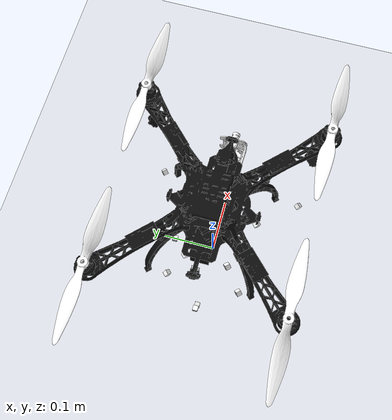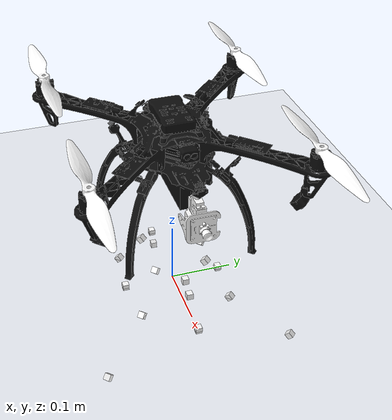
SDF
<?xml version="1.0" ?>
<sdf version='1.10'>
  <world name='hills'>
    <physics name='1ms' type='ignore'>
      <max_step_size>0.001</max_step_size>
      <real_time_factor>1</real_time_factor>
      <real_time_update_rate>1000</real_time_update_rate>
    </physics>
    <plugin name='gz::sim::systems::Physics' filename='gz-sim-physics-system'/>
    <plugin name='gz::sim::systems::Sensors' filename='gz-sim-sensors-system'>
      <render_engine>ogre2</render_engine>
    </plugin>
    <plugin name='gz::sim::systems::UserCommands' filename='gz-sim-user-commands-system'/>
    <plugin name='gz::sim::systems::SceneBroadcaster' filename='gz-sim-scene-broadcaster-system'/>
    <plugin name='gz::sim::systems::Imu' filename='gz-sim-imu-system'/>
    <plugin name='gz::sim::systems::NavSat' filename='gz-sim-navsat-system'/>
    <scene>
      <ambient>1 1 1 1</ambient>
      <background>0.800000012 0.800000012 0.800000012 1</background>
      <sky/>
      <shadows>true</shadows>
    </scene>
    <gravity>0 0 -9.8000000000000007</gravity>
    <magnetic_field>5.5644999999999998e-06 2.2875799999999999e-05 -4.2388400000000002e-05</magnetic_field>
    <atmosphere type='adiabatic'/>
    <model name='ground_plane'>
      <static>true</static>
      <link name='link'>
        <collision name='collision'>
          <geometry>
            <plane>
              <normal>0 0 1</normal>
              <size>100 100</size>
            </plane>
          </geometry>
          <surface>
            <friction>
              <ode/>
            </friction>
            <bounce/>
            <contact/>
          </surface>
        </collision>
        <visual name='visual'>
          <geometry>
            <plane>
              <normal>0 0 1</normal>
              <size>100 100</size>
            </plane>
          </geometry>
          <material>
            <ambient>0.800000012 0.800000012 0.800000012 1</ambient>
            <diffuse>0.800000012 0.800000012 0.800000012 1</diffuse>
            <specular>0.800000012 0.800000012 0.800000012 1</specular>
          </material>
        </visual>
        <pose>0 0 0 0 0 0</pose>
        <inertial>
          <pose>0 0 0 0 0 0</pose>
          <mass>1</mass>
          <inertia>
            <ixx>1</ixx>
            <ixy>0</ixy>
            <ixz>0</ixz>
            <iyy>1</iyy>
            <iyz>0</iyz>
            <izz>1</izz>
          </inertia>
        </inertial>
        <enable_wind>false</enable_wind>
      </link>
      <pose>0 0 0 0 0 0</pose>
      <self_collide>false</self_collide>
    </model>

    <include>
      <uri>model://kestrel_drone_lidar</uri>
    </include>

    <light name='sun' type='directional'>
      <pose>0 0 10 0 0 0</pose>
      <cast_shadows>true</cast_shadows>
      <intensity>1</intensity>
      <direction>-0.5 0.10000000000000001 -0.90000000000000002</direction>
      <diffuse>0.800000012 0.800000012 0.800000012 1</diffuse>
      <specular>0.800000012 0.800000012 0.800000012 1</specular>
      <attenuation>
        <range>1000</range>
        <linear>0.0099999997764825821</linear>
        <constant>0.89999997615814209</constant>
        <quadratic>0.0010000000474974513</quadratic>
      </attenuation>
      <spot>
        <inner_angle>0</inner_angle>
        <outer_angle>0</outer_angle>
        <falloff>0</falloff>
      </spot>
    </light>
  </world>
</sdf>

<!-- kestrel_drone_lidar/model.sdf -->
<sdf version="1.9">
    <model name='kestrel_drone_lidar'>
        <include>
            <uri>model://kestrel_drone</uri>
        </include>

        <!-- lidar 1: 45 down-forward-left  -->
        <link name="45dfl">
            <pose relative_to="45dfl-joint">0 0 0 0 0 0</pose>
            <inertial>
                <mass>0.1</mass>
                <inertia>
                    <ixx>0.000166667</ixx>
                    <iyy>0.000166667</iyy>
                    <izz>0.000166667</izz>
                </inertia>
            </inertial>
            <collision name="collision">
                <geometry>
                    <box>
                    <size>0.01 0.01 0.01</size>
                    </box>
                </geometry>
            </collision>
            <visual name="visual">
                <geometry>
                    <box>
                    <size>0.01 0.01 0.01</size>
                    </box>
                </geometry>
                <material>
                    <diffuse>1 1 1 0</diffuse>
                    <ambient>1 1 1 0</ambient>
                    <specular>1 1 1 0</specular>
                </material>
            </visual>
            <sensor name='gpu_lidar' type='gpu_lidar'>
                <topic>lidar/l45dfl</topic>
                <update_rate>10</update_rate>
                <lidar>
                    <scan>
                    <horizontal>
                        <samples>640</samples>
                        <resolution>1</resolution>
                        <min_angle>-0.471239</min_angle>
                        <max_angle>0.471239</max_angle>
                    </horizontal>
                    <vertical>
                        <samples>16</samples>
                        <resolution>1</resolution>
                        <min_angle>-0.471239</min_angle>
                        <max_angle>0.471239</max_angle>
                    </vertical>
                    </scan>
                    <range>
                    <min>0.08</min>
                    <max>4.0</max>
                    <resolution>0.01</resolution>
                    </range>
                    <noise>
                        <type>gaussian</type>
                        <mean>0.0</mean>
                        <stddev>0.1</stddev>
                    </noise>
                </lidar>
                <visualize>true</visualize>
            </sensor>
        </link>
        <joint name="45dfl-joint" type="fixed">
            <pose relative_to="kestrel_drone::base_link">
                0.0739 0.0734 0 0 0.785398 0.785398
            </pose>
            <parent>kestrel_drone::base_link</parent>
            <child>45dfl</child>
        </joint>

        <!-- Lidar 2: forward -->
        <link name="forward">
            <pose relative_to="forward-joint">0 0 0 0 0 0</pose>
            <inertial>
                <mass>0.1</mass>
                <inertia>
                    <ixx>0.000166667</ixx>
                    <iyy>0.000166667</iyy>
                    <izz>0.000166667</izz>
                </inertia>
            </inertial>
            <collision name="collision">
                <geometry>
                    <box>
                    <size>0.01 0.01 0.01</size>
                    </box>
                </geometry>
            </collision>
            <visual name="visual">
                <geometry>
                    <box>
                    <size>0.01 0.01 0.01</size>
                    </box>
                </geometry>
                <material>
                    <diffuse>1 1 1 0</diffuse>
                    <ambient>1 1 1 0</ambient>
                    <specular>1 1 1 0</specular>
                </material>
            </visual>
            <sensor name='gpu_lidar' type='gpu_lidar'>
                <topic>lidar/forward</topic>
                <update_rate>10</update_rate>
                <lidar>
                    <scan>
                    <horizontal>
                        <samples>640</samples>
                        <resolution>1</resolution>
                        <min_angle>-0.471239</min_angle>
                        <max_angle>0.471239</max_angle>
                    </horizontal>
                    <vertical>
                        <samples>16</samples>
                        <resolution>1</resolution>
                        <min_angle>-0.471239</min_angle>
                        <max_angle>0.471239</max_angle>
                    </vertical>
                    </scan>
                    <range>
                    <min>0.08</min>
                    <max>4.0</max>
                    <resolution>0.01</resolution>
                    </range>
                    <noise>
                        <type>gaussian</type>
                        <mean>0.0</mean>
                        <stddev>0.1</stddev>
                    </noise>
                </lidar>
                <visualize>true</visualize>
            </sensor>
        </link>
        <joint name="forward-joint" type="fixed">
            <pose relative_to="kestrel_drone::base_link">
                0.1294	0.0004	0.0012 0 0 0
            </pose>
            <parent>kestrel_drone::base_link</parent>
            <child>forward</child>
        </joint>

        <!-- Lidar 3: 45 down-forward-right -->
        <link name="45dfr">
            <pose relative_to="45dfr-joint">0 0 0 0 0 0</pose>
            <inertial>
                <mass>0.1</mass>
                <inertia>
                    <ixx>0.000166667</ixx>
                    <iyy>0.000166667</iyy>
                    <izz>0.000166667</izz>
                </inertia>
            </inertial>
            <collision name="collision">
                <geometry>
                    <box>
                    <size>0.01 0.01 0.01</size>
                    </box>
                </geometry>
            </collision>
            <visual name="visual">
                <geometry>
                    <box>
                    <size>0.01 0.01 0.01</size>
                    </box>
                </geometry>
                <material>
                    <diffuse>1 1 1 0</diffuse>
                    <ambient>1 1 1 0</ambient>
                    <specular>1 1 1 0</specular>
                </material>
            </visual>
            <sensor name='gpu_lidar' type='gpu_lidar'>
                <topic>lidar/l45dfr</topic>
                <update_rate>10</update_rate>
                <lidar>
                    <scan>
                    <horizontal>
                        <samples>640</samples>
                        <resolution>1</resolution>
                        <min_angle>-0.471239</min_angle>
                        <max_angle>0.471239</max_angle>
                    </horizontal>
                    <vertical>
                        <samples>16</samples>
                        <resolution>1</resolution>
                        <min_angle>-0.471239</min_angle>
                        <max_angle>0.471239</max_angle>
                    </vertical>
                    </scan>
                    <range>
                    <min>0.08</min>
                    <max>4.0</max>
                    <resolution>0.01</resolution>
                    </range>
                    <noise>
                        <type>gaussian</type>
                        <mean>0.0</mean>
                        <stddev>0.1</stddev>
                    </noise>
                </lidar>
                <visualize>true</visualize>
            </sensor>
        </link>
        <joint name="45dfr-joint" type="fixed">
            <pose relative_to="kestrel_drone::base_link">
                0.0730	-0.0735	0 0 0.785398 -0.785398
            </pose>
            <parent>kestrel_drone::base_link</parent>
            <child>45dfr</child>
        </joint>

        <!-- Lidar 4: Right -->
        <link name="right">
            <pose relative_to="right-joint">0 0 0 0 0 0</pose>
            <inertial>
                <mass>0.1</mass>
                <inertia>
                    <ixx>0.000166667</ixx>
                    <iyy>0.000166667</iyy>
                    <izz>0.000166667</izz>
                </inertia>
            </inertial>
            <collision name="collision">
                <geometry>
                    <box>
                    <size>0.01 0.01 0.01</size>
                    </box>
                </geometry>
            </collision>
            <visual name="visual">
                <geometry>
                    <box>
                    <size>0.01 0.01 0.01</size>
                    </box>
                </geometry>
                <material>
                    <diffuse>1 1 1 0</diffuse>
                    <ambient>1 1 1 0</ambient>
                    <specular>1 1 1 0</specular>
                </material>
            </visual>
            <sensor name='gpu_lidar' type='gpu_lidar'>
                <topic>lidar/right</topic>
                <update_rate>10</update_rate>
                <lidar>
                    <scan>
                    <horizontal>
                        <samples>640</samples>
                        <resolution>1</resolution>
                        <min_angle>-0.471239</min_angle>
                        <max_angle>0.471239</max_angle>
                    </horizontal>
                    <vertical>
                        <samples>16</samples>
                        <resolution>1</resolution>
                        <min_angle>-0.471239</min_angle>
                        <max_angle>0.471239</max_angle>
                    </vertical>
                    </scan>
                    <range>
                    <min>0.08</min>
                    <max>4.0</max>
                    <resolution>0.01</resolution>
                    </range>
                    <noise>
                        <type>gaussian</type>
                        <mean>0.0</mean>
                        <stddev>0.1</stddev>
                    </noise>
                </lidar>
                <visualize>true</visualize>
            </sensor>
        </link>
        <joint name="right-joint" type="fixed">
            <pose relative_to="kestrel_drone::base_link">
                0 -0.0810 0.0011 0 0 -1.570796
            </pose>
            <parent>kestrel_drone::base_link</parent>
            <child>right</child>
        </joint>

        <!-- Lidar 5: 45 down-rear-right -->
        <link name="45drr">
            <pose relative_to="45drr-joint">0 0 0 0 0 0</pose>
            <inertial>
                <mass>0.1</mass>
                <inertia>
                    <ixx>0.000166667</ixx>
                    <iyy>0.000166667</iyy>
                    <izz>0.000166667</izz>
                </inertia>
            </inertial>
            <collision name="collision">
                <geometry>
                    <box>
                    <size>0.01 0.01 0.01</size>
                    </box>
                </geometry>
            </collision>
            <visual name="visual">
                <geometry>
                    <box>
                    <size>0.01 0.01 0.01</size>
                    </box>
                </geometry>
                <material>
                    <diffuse>1 1 1 0</diffuse>
                    <ambient>1 1 1 0</ambient>
                    <specular>1 1 1 0</specular>
                </material>
            </visual>
            <sensor name='gpu_lidar' type='gpu_lidar'>
                <topic>lidar/l45drr</topic>
                <update_rate>10</update_rate>
                <lidar>
                    <scan>
                    <horizontal>
                        <samples>640</samples>
                        <resolution>1</resolution>
                        <min_angle>-0.471239</min_angle>
                        <max_angle>0.471239</max_angle>
                    </horizontal>
                    <vertical>
                        <samples>16</samples>
                        <resolution>1</resolution>
                        <min_angle>-0.471239</min_angle>
                        <max_angle>0.471239</max_angle>
                    </vertical>
                    </scan>
                    <range>
                    <min>0.08</min>
                    <max>4.0</max>
                    <resolution>0.01</resolution>
                    </range>
                    <noise>
                        <type>gaussian</type>
                        <mean>0.0</mean>
                        <stddev>0.1</stddev>
                    </noise>
                </lidar>
                <visualize>true</visualize>
            </sensor>
        </link>
        <joint name="45drr-joint" type="fixed">
            <pose relative_to="kestrel_drone::base_link">
                -0.0739	-0.0726	0 0 2.35619 0.785398
            </pose>
            <parent>kestrel_drone::base_link</parent>
            <child>45drr</child>
        </joint>

        <!-- Lidar 6: Rear -->
        <link name="rear">
            <pose relative_to="rear-joint">0 0 0 0 0 0</pose>
            <inertial>
                <mass>0.1</mass>
                <inertia>
                    <ixx>0.000166667</ixx>
                    <iyy>0.000166667</iyy>
                    <izz>0.000166667</izz>
                </inertia>
            </inertial>
            <collision name="collision">
                <geometry>
                    <box>
                    <size>0.01 0.01 0.01</size>
                    </box>
                </geometry>
            </collision>
            <visual name="visual">
                <geometry>
                    <box>
                    <size>0.01 0.01 0.01</size>
                    </box>
                </geometry>
                <material>
                    <diffuse>1 1 1 0</diffuse>
                    <ambient>1 1 1 0</ambient>
                    <specular>1 1 1 0</specular>
                </material>
            </visual>
            <sensor name='gpu_lidar' type='gpu_lidar'>
                <topic>lidar/rear</topic>
                <update_rate>10</update_rate>
                <lidar>
                    <scan>
                    <horizontal>
                        <samples>640</samples>
                        <resolution>1</resolution>
                        <min_angle>-0.471239</min_angle>
                        <max_angle>0.471239</max_angle>
                    </horizontal>
                    <vertical>
                        <samples>16</samples>
                        <resolution>1</resolution>
                        <min_angle>-0.471239</min_angle>
                        <max_angle>0.471239</max_angle>
                    </vertical>
                    </scan>
                    <range>
                    <min>0.08</min>
                    <max>4.0</max>
                    <resolution>0.01</resolution>
                    </range>
                    <noise>
                        <type>gaussian</type>
                        <mean>0.0</mean>
                        <stddev>0.1</stddev>
                    </noise>
                </lidar>
                <visualize>true</visualize>
            </sensor>
        </link>
        <joint name="rear-joint" type="fixed">
            <pose relative_to="kestrel_drone::base_link">
                -0.1264	0.0004	0.0012 0 0 3.14159
            </pose>
            <parent>kestrel_drone::base_link</parent>
            <child>rear</child>
        </joint>

        <!-- Lidar 7: 45 down-rear-left -->
        <link name="45drl">
            <pose relative_to="45drl-joint">0 0 0 0 0 0</pose>
            <inertial>
                <mass>0.1</mass>
                <inertia>
                    <ixx>0.000166667</ixx>
                    <iyy>0.000166667</iyy>
                    <izz>0.000166667</izz>
                </inertia>
            </inertial>
            <collision name="collision">
                <geometry>
                    <box>
                    <size>0.01 0.01 0.01</size>
                    </box>
                </geometry>
            </collision>
            <visual name="visual">
                <geometry>
                    <box>
                    <size>0.01 0.01 0.01</size>
                    </box>
                </geometry>
                <material>
                    <diffuse>1 1 1 0</diffuse>
                    <ambient>1 1 1 0</ambient>
                    <specular>1 1 1 0</specular>
                </material>
            </visual>
            <sensor name='gpu_lidar' type='gpu_lidar'>
                <topic>lidar/l45drl</topic>
                <update_rate>10</update_rate>
                <lidar>
                    <scan>
                    <horizontal>
                        <samples>640</samples>
                        <resolution>1</resolution>
                        <min_angle>-0.471239</min_angle>
                        <max_angle>0.471239</max_angle>
                    </horizontal>
                    <vertical>
                        <samples>16</samples>
                        <resolution>1</resolution>
                        <min_angle>-0.471239</min_angle>
                        <max_angle>0.471239</max_angle>
                    </vertical>
                    </scan>
                    <range>
                    <min>0.08</min>
                    <max>4.0</max>
                    <resolution>0.01</resolution>
                    </range>
                    <noise>
                        <type>gaussian</type>
                        <mean>0.0</mean>
                        <stddev>0.1</stddev>
                    </noise>
                </lidar>
                <visualize>true</visualize>
            </sensor>
        </link>
        <joint name="45drl-joint" type="fixed">
            <pose relative_to="kestrel_drone::base_link">
                -0.0730	0.0743	0 0 2.35619 -0.785398
            </pose>
            <parent>kestrel_drone::base_link</parent>
            <child>45drl</child>
        </joint>

        <!-- Lidar 8: Left -->
        <link name="left">
            <pose relative_to="left-joint">0 0 0 0 0 0</pose>
            <inertial>
                <mass>0.1</mass>
                <inertia>
                    <ixx>0.000166667</ixx>
                    <iyy>0.000166667</iyy>
                    <izz>0.000166667</izz>
                </inertia>
            </inertial>
            <collision name="collision">
                <geometry>
                    <box>
                    <size>0.01 0.01 0.01</size>
                    </box>
                </geometry>
            </collision>
            <visual name="visual">
                <geometry>
                    <box>
                    <size>0.01 0.01 0.01</size>
                    </box>
                </geometry>
                <material>
                    <diffuse>1 1 1 0</diffuse>
                    <ambient>1 1 1 0</ambient>
                    <specular>1 1 1 0</specular>
                </material>
            </visual>
            <sensor name='gpu_lidar' type='gpu_lidar'>
                <topic>lidar/left</topic>
                <update_rate>10</update_rate>
                <lidar>
                    <scan>
                    <horizontal>
                        <samples>640</samples>
                        <resolution>1</resolution>
                        <min_angle>-0.471239</min_angle>
                        <max_angle>0.471239</max_angle>
                    </horizontal>
                    <vertical>
                        <samples>16</samples>
                        <resolution>1</resolution>
                        <min_angle>-0.471239</min_angle>
                        <max_angle>0.471239</max_angle>
                    </vertical>
                    </scan>
                    <range>
                    <min>0.08</min>
                    <max>4.0</max>
                    <resolution>0.01</resolution>
                    </range>
                    <noise>
                        <type>gaussian</type>
                        <mean>0.0</mean>
                        <stddev>0.1</stddev>
                    </noise>
                </lidar>
                <visualize>true</visualize>
            </sensor>
        </link>
        <joint name="left-joint" type="fixed">
            <pose relative_to="kestrel_drone::base_link">
                0.0000	0.0789	0.0011 0 0 1.570796
            </pose>
            <parent>kestrel_drone::base_link</parent>
            <child>left</child>
        </joint>

        <!-- Lidar 9: Down -->
        <link name="down">
            <pose relative_to="down-joint">0 0 0 0 0 0</pose>
            <inertial>
                <mass>0.1</mass>
                <inertia>
                    <ixx>0.000166667</ixx>
                    <iyy>0.000166667</iyy>
                    <izz>0.000166667</izz>
                </inertia>
            </inertial>
            <collision name="collision">
                <geometry>
                    <box>
                    <size>0.01 0.01 0.01</size>
                    </box>
                </geometry>
            </collision>
            <visual name="visual">
                <geometry>
                    <box>
                    <size>0.01 0.01 0.01</size>
                    </box>
                </geometry>
                <material>
                    <diffuse>1 1 1 0</diffuse>
                    <ambient>1 1 1 0</ambient>
                    <specular>1 1 1 0</specular>
                </material>
            </visual>
            <sensor name='gpu_lidar' type='gpu_lidar'>
                <topic>lidar/down</topic>
                <update_rate>10</update_rate>
                <lidar>
                    <scan>
                    <horizontal>
                        <samples>640</samples>
                        <resolution>1</resolution>
                        <min_angle>-0.471239</min_angle>
                        <max_angle>0.471239</max_angle>
                    </horizontal>
                    <vertical>
                        <samples>16</samples>
                        <resolution>1</resolution>
                        <min_angle>-0.471239</min_angle>
                        <max_angle>0.471239</max_angle>
                    </vertical>
                    </scan>
                    <range>
                    <min>0.08</min>
                    <max>4.0</max>
                    <resolution>0.01</resolution>
                    </range>
                    <noise>
                        <type>gaussian</type>
                        <mean>0.0</mean>
                        <stddev>0.1</stddev>
                    </noise>
                </lidar>
                <visualize>true</visualize>
            </sensor>
        </link>
        <joint name="down-joint" type="fixed">
            <pose relative_to="kestrel_drone::base_link">
                -0.1154	0.0004	-0.0186 0 1.5708 0
            </pose>
            <parent>kestrel_drone::base_link</parent>
            <child>down</child>
        </joint>

        <!-- Lidar 10: 45 up-forward-right -->
        <link name="45ufr">
            <pose relative_to="45ufr-joint">0 0 0 0 0 0</pose>
            <inertial>
                <mass>0.1</mass>
                <inertia>
                    <ixx>0.000166667</ixx>
                    <iyy>0.000166667</iyy>
                    <izz>0.000166667</izz>
                </inertia>
            </inertial>
            <collision name="collision">
                <geometry>
                    <box>
                    <size>0.01 0.01 0.01</size>
                    </box>
                </geometry>
            </collision>
            <visual name="visual">
                <geometry>
                    <box>
                    <size>0.01 0.01 0.01</size>
                    </box>
                </geometry>
                <material>
                    <diffuse>1 1 1 0</diffuse>
                    <ambient>1 1 1 0</ambient>
                    <specular>1 1 1 0</specular>
                </material>
            </visual>
            <sensor name='gpu_lidar' type='gpu_lidar'>
                <topic>lidar/l45ufr</topic>
                <update_rate>10</update_rate>
                <lidar>
                    <scan>
                    <horizontal>
                        <samples>640</samples>
                        <resolution>1</resolution>
                        <min_angle>-0.471239</min_angle>
                        <max_angle>0.471239</max_angle>
                    </horizontal>
                    <vertical>
                        <samples>16</samples>
                        <resolution>1</resolution>
                        <min_angle>-0.471239</min_angle>
                        <max_angle>0.471239</max_angle>
                    </vertical>
                    </scan>
                    <range>
                    <min>0.08</min>
                    <max>4.0</max>
                    <resolution>0.01</resolution>
                    </range>
                    <noise>
                        <type>gaussian</type>
                        <mean>0.0</mean>
                        <stddev>0.1</stddev>
                    </noise>
                </lidar>
                <visualize>true</visualize>
            </sensor>
        </link>
        <joint name="45ufr-joint" type="fixed">
            <pose relative_to="kestrel_drone::base_link">
                0.0411	-0.0415	0.0580 0 -0.785398 -0.785398
            </pose>
            <parent>kestrel_drone::base_link</parent>
            <child>45ufr</child>
        </joint>

        <!-- Lidar 11: Up -->
        <link name="up">
            <pose relative_to="up-joint">0 0 0 0 0 0</pose>
            <inertial>
                <mass>0.1</mass>
                <inertia>
                    <ixx>0.000166667</ixx>
                    <iyy>0.000166667</iyy>
                    <izz>0.000166667</izz>
                </inertia>
            </inertial>
            <collision name="collision">
                <geometry>
                    <box>
                    <size>0.01 0.01 0.01</size>
                    </box>
                </geometry>
            </collision>
            <visual name="visual">
                <geometry>
                    <box>
                    <size>0.01 0.01 0.01</size>
                    </box>
                </geometry>
                <material>
                    <diffuse>1 1 1 0</diffuse>
                    <ambient>1 1 1 0</ambient>
                    <specular>1 1 1 0</specular>
                </material>
            </visual>
            <sensor name='gpu_lidar' type='gpu_lidar'>
                <topic>lidar/up</topic>
                <update_rate>10</update_rate>
                <lidar>
                    <scan>
                    <horizontal>
                        <samples>640</samples>
                        <resolution>1</resolution>
                        <min_angle>-0.471239</min_angle>
                        <max_angle>0.471239</max_angle>
                    </horizontal>
                    <vertical>
                        <samples>16</samples>
                        <resolution>1</resolution>
                        <min_angle>-0.471239</min_angle>
                        <max_angle>0.471239</max_angle>
                    </vertical>
                    </scan>
                    <range>
                    <min>0.08</min>
                    <max>4.0</max>
                    <resolution>0.01</resolution>
                    </range>
                    <noise>
                        <type>gaussian</type>
                        <mean>0.0</mean>
                        <stddev>0.1</stddev>
                    </noise>
                </lidar>
                <visualize>true</visualize>
            </sensor>
        </link>
        <joint name="up-joint" type="fixed">
            <pose relative_to="kestrel_drone::base_link">
                0.0653 -0.0001 0.0466 0 -1.5708 0
            </pose>
            <parent>kestrel_drone::base_link</parent>
            <child>up</child>
        </joint>

        <!-- Lidar 12: 45 up-forward-left -->
        <link name="45ufl">
            <pose relative_to="45ufl-joint">0 0 0 0 0 0</pose>
            <inertial>
                <mass>0.1</mass>
                <inertia>
                    <ixx>0.000166667</ixx>
                    <iyy>0.000166667</iyy>
                    <izz>0.000166667</izz>
                </inertia>
            </inertial>
            <collision name="collision">
                <geometry>
                    <box>
                    <size>0.01 0.01 0.01</size>
                    </box>
                </geometry>
            </collision>
            <visual name="visual">
                <geometry>
                    <box>
                    <size>0.01 0.01 0.01</size>
                    </box>
                </geometry>
                <material>
                    <diffuse>1 1 1 0</diffuse>
                    <ambient>1 1 1 0</ambient>
                    <specular>1 1 1 0</specular>
                </material>
            </visual>
            <sensor name='gpu_lidar' type='gpu_lidar'>
                <topic>lidar/l45ufl</topic>
                <update_rate>10</update_rate>
                <lidar>
                    <scan>
                    <horizontal>
                        <samples>640</samples>
                        <resolution>1</resolution>
                        <min_angle>-0.471239</min_angle>
                        <max_angle>0.471239</max_angle>
                    </horizontal>
                    <vertical>
                        <samples>16</samples>
                        <resolution>1</resolution>
                        <min_angle>-0.471239</min_angle>
                        <max_angle>0.471239</max_angle>
                    </vertical>
                    </scan>
                    <range>
                    <min>0.08</min>
                    <max>4.0</max>
                    <resolution>0.01</resolution>
                    </range>
                    <noise>
                        <type>gaussian</type>
                        <mean>0.0</mean>
                        <stddev>0.1</stddev>
                    </noise>
                </lidar>
                <visualize>true</visualize>
            </sensor>
        </link>
        <joint name="45ufl-joint" type="fixed">
            <pose relative_to="kestrel_drone::base_link">
                0.0424	0.0415	0.0580 0 -0.785398 0.785398
            </pose>
            <parent>kestrel_drone::base_link</parent>
            <child>45ufl</child>
        </joint>

        <!-- Lidar 13: 45 up-rear-left -->
        <link name="45url">
            <pose relative_to="45url-joint">0 0 0 0 0 0</pose>
            <inertial>
                <mass>0.1</mass>
                <inertia>
                    <ixx>0.000166667</ixx>
                    <iyy>0.000166667</iyy>
                    <izz>0.000166667</izz>
                </inertia>
            </inertial>
            <collision name="collision">
                <geometry>
                    <box>
                    <size>0.01 0.01 0.01</size>
                    </box>
                </geometry>
            </collision>
            <visual name="visual">
                <geometry>
                    <box>
                    <size>0.01 0.01 0.01</size>
                    </box>
                </geometry>
                <material>
                    <diffuse>1 1 1 0</diffuse>
                    <ambient>1 1 1 0</ambient>
                    <specular>1 1 1 0</specular>
                </material>
            </visual>
            <sensor name='gpu_lidar' type='gpu_lidar'>
                <topic>lidar/l45url</topic>
                <update_rate>10</update_rate>
                <lidar>
                    <scan>
                    <horizontal>
                        <samples>640</samples>
                        <resolution>1</resolution>
                        <min_angle>-0.471239</min_angle>
                        <max_angle>0.471239</max_angle>
                    </horizontal>
                    <vertical>
                        <samples>16</samples>
                        <resolution>1</resolution>
                        <min_angle>-0.471239</min_angle>
                        <max_angle>0.471239</max_angle>
                    </vertical>
                    </scan>
                    <range>
                    <min>0.08</min>
                    <max>4.0</max>
                    <resolution>0.01</resolution>
                    </range>
                    <noise>
                        <type>gaussian</type>
                        <mean>0.0</mean>
                        <stddev>0.1</stddev>
                    </noise>
                </lidar>
                <visualize>true</visualize>
            </sensor>
        </link>
        <joint name="45url-joint" type="fixed">
            <pose relative_to="kestrel_drone::base_link">
                -0.0411	0.0429	0.0580 0 -2.35619 -0.785398
            </pose>
            <parent>kestrel_drone::base_link</parent>
            <child>45url</child>
        </joint>

        <!-- Lidar 14: 45 up-rear-right -->
        <link name="45urr">
            <pose relative_to="45urr-joint">0 0 0 0 0 0</pose>
            <inertial>
                <mass>0.1</mass>
                <inertia>
                    <ixx>0.000166667</ixx>
                    <iyy>0.000166667</iyy>
                    <izz>0.000166667</izz>
                </inertia>
            </inertial>
            <collision name="collision">
                <geometry>
                    <box>
                    <size>0.01 0.01 0.01</size>
                    </box>
                </geometry>
            </collision>
            <visual name="visual">
                <geometry>
                    <box>
                    <size>0.01 0.01 0.01</size>
                    </box>
                </geometry>
                <material>
                    <diffuse>1 1 1 0</diffuse>
                    <ambient>1 1 1 0</ambient>
                    <specular>1 1 1 0</specular>
                </material>
            </visual>
            <sensor name='gpu_lidar' type='gpu_lidar'>
                <topic>lidar/l45urr</topic>
                <update_rate>10</update_rate>
                <lidar>
                    <scan>
                    <horizontal>
                        <samples>640</samples>
                        <resolution>1</resolution>
                        <min_angle>-0.471239</min_angle>
                        <max_angle>0.471239</max_angle>
                    </horizontal>
                    <vertical>
                        <samples>16</samples>
                        <resolution>1</resolution>
                        <min_angle>-0.471239</min_angle>
                        <max_angle>0.471239</max_angle>
                    </vertical>
                    </scan>
                    <range>
                    <min>0.08</min>
                    <max>4.0</max>
                    <resolution>0.01</resolution>
                    </range>
                    <noise>
                        <type>gaussian</type>
                        <mean>0.0</mean>
                        <stddev>0.1</stddev>
                    </noise>
                </lidar>
                <visualize>true</visualize>
            </sensor>
        </link>
        <joint name="45urr-joint" type="fixed">
            <pose relative_to="kestrel_drone::base_link">
                -0.0424	-0.0406	0.0580 0 -2.35619 0.785398
            </pose>
            <parent>kestrel_drone::base_link</parent>
            <child>45urr</child>
        </joint>

        <!-- Lidar 15: Forward long range -->
        <link name="forwardl">
            <pose relative_to="forwardl-joint">0 0 0 0 0 0</pose>
            <inertial>
                <mass>0.1</mass>
                <inertia>
                    <ixx>0.000166667</ixx>
                    <iyy>0.000166667</iyy>
                    <izz>0.000166667</izz>
                </inertia>
            </inertial>
            <collision name="collision">
                <geometry>
                    <box>
                    <size>0.01 0.01 0.01</size>
                    </box>
                </geometry>
            </collision>
            <visual name="visual">
                <geometry>
                    <box>
                    <size>0.01 0.01 0.01</size>
                    </box>
                </geometry>
                <material>
                    <diffuse>1 1 1 0</diffuse>
                    <ambient>1 1 1 0</ambient>
                    <specular>1 1 1 0</specular>
                </material>
            </visual>
            <sensor name='gpu_lidar' type='gpu_lidar'>
                <topic>lidar/forwardl</topic>
                <update_rate>10</update_rate>
                <lidar>
                    <scan>
                    <horizontal>
                        <samples>640</samples>
                        <resolution>1</resolution>
                        <min_angle>-0.0349066</min_angle>
                        <max_angle>0.0349066</max_angle>
                    </horizontal>
                    <vertical>
                        <samples>16</samples>
                        <resolution>1</resolution>
                        <min_angle>-0.0349066</min_angle>
                        <max_angle>0.0349066</max_angle>
                    </vertical>
                    </scan>
                    <range>
                    <min>0.08</min>
                    <max>8.0</max>
                    <resolution>0.01</resolution>
                    </range>
                    <noise>
                        <type>gaussian</type>
                        <mean>0.0</mean>
                        <stddev>0.1</stddev>
                    </noise>
                </lidar>
                <visualize>true</visualize>
            </sensor>
        </link>
        <joint name="forwardl-joint" type="fixed">
            <pose relative_to="kestrel_drone::base_link">
                0.0866	-0.0001	0.0339 0 0 0
            </pose>
            <parent>kestrel_drone::base_link</parent>
            <child>forwardl</child>
        </joint>

        <!-- Lidar 16: 45 down-forward-right(long) -->
        <link name="45dfrl">
            <pose relative_to="45dfrl-joint">0 0 0 0 0 0</pose>
            <inertial>
                <mass>0.1</mass>
                <inertia>
                    <ixx>0.000166667</ixx>
                    <iyy>0.000166667</iyy>
                    <izz>0.000166667</izz>
                </inertia>
            </inertial>
            <collision name="collision">
                <geometry>
                    <box>
                    <size>0.01 0.01 0.01</size>
                    </box>
                </geometry>
            </collision>
            <visual name="visual">
                <geometry>
                    <box>
                    <size>0.01 0.01 0.01</size>
                    </box>
                </geometry>
                <material>
                    <diffuse>1 1 1 0</diffuse>
                    <ambient>1 1 1 0</ambient>
                    <specular>1 1 1 0</specular>
                </material>
            </visual>
            <sensor name='gpu_lidar' type='gpu_lidar'>
                <topic>lidar/l45dfrl</topic>
                <update_rate>10</update_rate>
                <lidar>
                    <scan>
                    <horizontal>
                        <samples>640</samples>
                        <resolution>1</resolution>
                        <min_angle>-0.0349066</min_angle>
                        <max_angle>0.0349066</max_angle>
                    </horizontal>
                    <vertical>
                        <samples>16</samples>
                        <resolution>1</resolution>
                        <min_angle>-0.0349066</min_angle>
                        <max_angle>0.0349066</max_angle>
                    </vertical>
                    </scan>
                    <range>
                    <min>0.08</min>
                    <max>8.0</max>
                    <resolution>0.01</resolution>
                    </range>
                    <noise>
                        <type>gaussian</type>
                        <mean>0.0</mean>
                        <stddev>0.1</stddev>
                    </noise>
                </lidar>
                <visualize>true</visualize>
            </sensor>
        </link>
        <joint name="45dfrl-joint" type="fixed">
            <pose relative_to="kestrel_drone::base_link">
               0.1482	-0.1484	-0.0366 0 0.785398 -0.785398
            </pose>
            <parent>kestrel_drone::base_link</parent>
            <child>45dfrl</child>
        </joint>

        <!-- Lidar 16: 45 down-forward-left(long) -->
        <link name="45dfrll">
            <pose relative_to="45dfrll-joint">0 0 0 0 0 0</pose>
            <inertial>
                <mass>0.1</mass>
                <inertia>
                    <ixx>0.000166667</ixx>
                    <iyy>0.000166667</iyy>
                    <izz>0.000166667</izz>
                </inertia>
            </inertial>
            <collision name="collision">
                <geometry>
                    <box>
                    <size>0.01 0.01 0.01</size>
                    </box>
                </geometry>
            </collision>
            <visual name="visual">
                <geometry>
                    <box>
                    <size>0.01 0.01 0.01</size>
                    </box>
                </geometry>
                <material>
                    <diffuse>1 1 1 0</diffuse>
                    <ambient>1 1 1 0</ambient>
                    <specular>1 1 1 0</specular>
                </material>
            </visual>
            <sensor name='gpu_lidar' type='gpu_lidar'>
                <topic>lidar/l45dfrll</topic>
                <update_rate>10</update_rate>
                <lidar>
                    <scan>
                    <horizontal>
                        <samples>640</samples>
                        <resolution>1</resolution>
                        <min_angle>-0.0349066</min_angle>
                        <max_angle>0.0349066</max_angle>
                    </horizontal>
                    <vertical>
                        <samples>16</samples>
                        <resolution>1</resolution>
                        <min_angle>-0.0349066</min_angle>
                        <max_angle>0.0349066</max_angle>
                    </vertical>
                    </scan>
                    <range>
                    <min>0.08</min>
                    <max>8.0</max>
                    <resolution>0.01</resolution>
                    </range>
                    <noise>
                        <type>gaussian</type>
                        <mean>0.0</mean>
                        <stddev>0.1</stddev>
                    </noise>
                </lidar>
                <visualize>true</visualize>
            </sensor>
        </link>
        <joint name="45dfrll-joint" type="fixed">
            <pose relative_to="kestrel_drone::base_link">
               0.1488	0.1487	-0.0366 0 0.785398 0.785398
            </pose>
            <parent>kestrel_drone::base_link</parent>
            <child>45dfrll</child>
        </joint>

    </model>
</sdf>

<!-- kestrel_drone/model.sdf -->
<sdf version="1.9">
    <model name='kestrel_drone'>
        <pose>0 0 0.25 0 0 0</pose>
        <link name='base_link'>
        <velocity_decay>
            <linear>0.0</linear>
            <angular>0.0</angular>
        </velocity_decay>
        <inertial>
            <pose>0.008 -0.0003 0.006 0 0 0</pose>
            <mass>1.6</mass>
            <inertia>
            <ixx>0.0055</ixx>
            <ixy>0</ixy>
            <ixz>0</ixz>
            <iyy>0.0067</iyy>
            <iyz>0</iyz>
            <izz>0.0099</izz>
            </inertia>
        </inertial>
        <collision name='base_link_collision'>
            <pose>0 0 0 0 0 0</pose>
            <geometry>
            <box>
                <size>0.358541 0.358541 0.212</size>
            </box>
            </geometry>
            <surface>
            <contact>
                <ode>
                <max_vel>100.0</max_vel>
                <min_depth>0.001</min_depth>
                </ode>
            </contact>
            <friction>
                <ode>
                <mu>100000.0</mu>
                <mu2>100000.0</mu2>
                </ode>
            </friction>
            </surface>
        </collision>
        <visual name='base_link_visual'>
            <pose>0 0 0 0 0 0</pose>
            <geometry>
                <mesh>
                    <scale>1 1 1</scale>
                    <uri>model://kestrel_drone/meshes/base_link.STL</uri>
                </mesh>
            </geometry>
            <material>
                <ambient>0.05 0.05 0.05</ambient>
                <diffuse>0.05 0.05 0.05</diffuse>
                <specular>1 1 1 1</specular>
                <pbr>
                    <metal>
                        <metalness>0.5</metalness>
                        <roughness>0.5</roughness>
                    </metal>
                </pbr>
            </material>
        </visual>
        </link>
        <joint name='CameraPt1-joint' type='revolute'>
        <pose relative_to='base_link'>0.1087 0 -0.051799999999999999 0 0 -0.016688999999999996</pose>
        <parent>base_link</parent>
        <child>CameraPt1</child>
        <axis>
            <xyz>0 0 1</xyz>
            <limit>
            <effort>1.4710000000000001</effort>
            <velocity>5.2359999999999998</velocity>
            <lower>0</lower>
            <upper>3.1415</upper>
            </limit>
            <dynamics>
                <spring_reference>0</spring_reference>
                <spring_stiffness>0</spring_stiffness>
            </dynamics>
        </axis>
        </joint>
        <link name='CameraPt1'>
        <pose relative_to='CameraPt1-joint'>0 0 0 0 0 0</pose>
        <inertial>
            <pose>-0.10077 -0.0019816999999999999 0.058075000000000002 0 0 0</pose>
            <mass>0.01</mass>
            <inertia>
            <ixx>0.0054891000000000002</ixx>
            <ixy>-1.2663000000000001e-05</ixy>
            <ixz>0.00018552999999999999</ixz>
            <iyy>0.0066689999999999996</iyy>
            <iyz>1.8978000000000001e-06</iyz>
            <izz>0.0098706999999999996</izz>
            </inertia>
        </inertial>
        <collision name='CameraPt1_collision'>
            <pose>0 0 0 0 0 0</pose>
            <geometry>
            <mesh>
                <scale>1 1 1</scale>
                <uri>model://kestrel_drone/meshes/CameraPt1.STL</uri>
            </mesh>
            </geometry>
        </collision>
        <visual name='CameraPt1_visual'>
            <pose>0 0 0 0 0 0</pose>
            <geometry>
            <mesh>
                <scale>1 1 1</scale>
                <uri>model://kestrel_drone/meshes/CameraPt1.STL</uri>
            </mesh>
            </geometry>
            <material>
                <diffuse>1 1 1 1</diffuse>
                <ambient>1 1 1 1</ambient>
                <pbr>
                    <metal>
                        <metalness>0.5</metalness>
                        <roughness>0.5</roughness>
                    </metal>
                </pbr>
            </material>
        </visual>
        </link>
        <joint name='CameraPt2-joint' type='revolute'>
        <pose relative_to='CameraPt1'>0.011849999999999999 0 0.0079000000000000008 0 0.0053803999999999996 0</pose>
        <parent>CameraPt1</parent>
        <child>CameraPt2</child>
        <axis>
            <xyz>0 -1 0</xyz>
            <limit>
            <effort>1.571</effort>
            <velocity>5.236</velocity>
            <lower>-1.5708</lower>
            <upper>0</upper>
            </limit>
            <dynamics>
            <spring_reference>0</spring_reference>
            <spring_stiffness>0</spring_stiffness>
            </dynamics>
        </axis>
        </joint>
        <link name='CameraPt2'>
        <pose relative_to='CameraPt2-joint'>0 0 0 0 0 0</pose>
        <inertial>
            <pose>-0.11289 -0.0019816999999999999 0.049568000000000001 0 0 0</pose>
            <mass>0.01</mass>
            <inertia>
            <ixx>0.0054872000000000002</ixx>
            <ixy>-1.2673e-05</ixy>
            <ixz>0.00016194000000000001</ixz>
            <iyy>0.0066689999999999996</iyy>
            <iyz>1.8296e-06</iyz>
            <izz>0.0098724999999999993</izz>
            </inertia>
        </inertial>
        <collision name='CameraPt2_collision'>
            <pose>0 0 0 0 0 0</pose>
            <geometry>
            <mesh>
                <scale>1 1 1</scale>
                <uri>model://kestrel_drone/meshes/CameraPt2.STL</uri>
            </mesh>
            </geometry>
        </collision>
        <visual name='CameraPt2_visual'>
            <pose>0 0 0 0 0 0</pose>
            <geometry>
            <mesh>
                <scale>1 1 1</scale>
                <uri>model://kestrel_drone/meshes/CameraPt2.STL</uri>
            </mesh>
            </geometry>
            <material>
                <diffuse>1 1 1 1</diffuse>
                <ambient>1 1 1 1</ambient>
                <pbr>
                    <metal>
                        <metalness>0.5</metalness>
                        <roughness>0.5</roughness>
                    </metal>
                </pbr>
            </material>
        </visual>
        <sensor name="camera" type="camera">
            <pose>0 0 0 0 0 0</pose>
            <camera>
            <horizontal_fov>2.0</horizontal_fov>
            <image>
                <width>640</width>
                <height>480</height>
            </image>
            <clip>
                <near>0.05</near>
                <far>15000</far>
            </clip>
            </camera>
            <always_on>1</always_on>
            <update_rate>10</update_rate>
            <visualize>1</visualize>
            <topic>/camera/image_raw</topic>

            <plugin filename="CameraZoomPlugin"
                name="CameraZoomPlugin">
            <max_zoom>125.0</max_zoom>
            <slew_rate>0.42514285714</slew_rate>
            </plugin>

            <plugin name="GstCameraPlugin"
                filename="GstCameraPlugin">
            <udp_host>127.0.0.1</udp_host>
            <udp_port>5600</udp_port>
            <use_basic_pipeline>true</use_basic_pipeline>
            <use_cuda>false</use_cuda>
            </plugin>

        </sensor>

        </link>
        <joint name='Prop1-joint' type='revolute'>
            <pose relative_to='base_link'>0.15846 -0.15891 0.055962 0 0 0</pose>
            <parent>base_link</parent>
            <child>Prop1</child>
            <axis>
                <xyz>0 0 1</xyz>
                <limit>
                    <lower>-Inf</lower>
                    <upper>Inf</upper>
                </limit>
                <dynamics>
                    <damping>0.005</damping>
                </dynamics>
            </axis>
            <physics>
                <ode>
                <implicit_spring_damper>1</implicit_spring_damper>
                </ode>
            </physics>
        </joint>
        <link name='Prop1'>
            <pose relative_to='Prop1-joint'>0 0 0 0 0 0</pose>
            <inertial>
                <pose>-0.0000001705 0.0094872 -0.000012556 0 0 0</pose>
                <mass>0.025</mass>
                <inertia>
                    <ixx>9.75e-06</ixx>
                    <ixy>0</ixy>
                    <ixz>0</ixz>
                    <iyy>0.000166704</iyy>
                    <iyz>0</iyz>
                    <izz>0.000167604</izz>
                </inertia>
            </inertial>
            <collision name='Prop1_collision'>
                <pose>0 0 0 0 0 0</pose>
                <geometry>
                    <cylinder>
                        <length>0.005</length>
                        <radius>0.1</radius>
                    </cylinder>
                </geometry>
                <surface>
                <contact>
                    <ode/>
                </contact>
                <friction>
                    <ode/>
                </friction>
                </surface>
            </collision>
            <visual name='Prop1_visual'>
                <pose>0 0 0 0 0 0</pose>
                <geometry>
                    <mesh>
                        <scale>1 1 1</scale>
                        <uri>model://kestrel_drone/meshes/Prop1.STL</uri>
                    </mesh>
                </geometry>
                <material>
                <diffuse>1 1 1 1</diffuse>
                <ambient>1 1 1 1</ambient>
                <pbr>
                    <metal>
                        <metalness>0.5</metalness>
                        <roughness>0.5</roughness>
                    </metal>
                </pbr>
                </material>
            </visual>
            <gravity>1</gravity>
            <velocity_decay/>
            <self_collide>0</self_collide>
        </link>
        <joint name='Prop2-joint' type='revolute'>
            <pose relative_to='base_link'>-0.15846 0.15891 0.055962 0 0 0</pose>
            <parent>base_link</parent>
            <child>Prop2</child>
            <axis>
                <xyz>0 0 1</xyz>
                <limit>
                    <lower>-Inf</lower>
                    <upper>Inf</upper>
                </limit>
                <dynamics>
                    <damping>0.005</damping>
                </dynamics>
            </axis>
            <physics>
                <ode>
                <implicit_spring_damper>1</implicit_spring_damper>
                </ode>
            </physics>
        </joint>
        <link name='Prop2'>
            <pose relative_to='Prop2-joint'>0 0 0 0 0 0</pose>
            <inertial>
                <pose>-0.0000001705 0.0094872 -0.000012556 0 0 0</pose>
                <mass>0.025</mass>
                <inertia>
                    <ixx>9.75e-06</ixx>
                    <ixy>0</ixy>
                    <ixz>0</ixz>
                    <iyy>0.000166704</iyy>
                    <iyz>0</iyz>
                    <izz>0.000167604</izz>
                </inertia>
            </inertial>
            <collision name='Prop2_collision'>
                <pose>0 0 0 0 0 0</pose>
                <geometry>
                    <cylinder>
                        <length>0.005</length>
                        <radius>0.1</radius>
                    </cylinder>
                </geometry>
                <surface>
                <contact>
                    <ode/>
                </contact>
                <friction>
                    <ode/>
                </friction>
                </surface>
            </collision>
            <visual name='Prop2_visual'>
                <pose>0 0 0 0 0 0</pose>
                <geometry>
                <mesh>
                    <scale>1 1 1</scale>
                    <uri>model://kestrel_drone/meshes/Prop2.STL</uri>
                </mesh>
                </geometry>
                <material>
                <diffuse>1 1 1 1</diffuse>
                <ambient>1 1 1 1</ambient>
                <pbr>
                    <metal>
                        <metalness>0.5</metalness>
                        <roughness>0.5</roughness>
                    </metal>
                </pbr>
                </material>
            </visual>
            <gravity>1</gravity>
            <velocity_decay/>
            <self_collide>0</self_collide>
        </link>
        <joint name='Prop3-joint' type='revolute'>
            <pose relative_to='base_link'>0.15891 0.15846 0.055962 0 0 0</pose>
            <parent>base_link</parent>
            <child>Prop3</child>
            <axis>
                <xyz>0 0 1</xyz>
                <limit>
                    <lower>-Inf</lower>
                    <upper>Inf</upper>
                </limit>
                <dynamics>
                    <damping>0.005</damping>
                </dynamics>
            </axis>
            <physics>
                <ode>
                <implicit_spring_damper>1</implicit_spring_damper>
                </ode>
            </physics>
        </joint>
        <link name='Prop3'>
            <pose relative_to='Prop3-joint'>0 0 0 0 0 0</pose>
            <inertial>
                <pose>-0.0000001705 0.0094872 -0.000012556 0 0 0</pose>
                <mass>0.018153</mass>
                <mass>0.025</mass>
                <inertia>
                    <ixx>9.75e-06</ixx>
                    <ixy>0</ixy>
                    <ixz>0</ixz>
                    <iyy>0.000166704</iyy>
                    <iyz>0</iyz>
                    <izz>0.000167604</izz>
                </inertia>
            </inertial>
            <collision name='Prop3_collision'>
                <pose>0 0 0 0 0 0</pose>
                <geometry>
                    <cylinder>
                        <length>0.005</length>
                        <radius>0.1</radius>
                    </cylinder>
                </geometry>
                <surface>
                <contact>
                    <ode/>
                </contact>
                <friction>
                    <ode/>
                </friction>
                </surface>
            </collision>
            <visual name='Prop3_visual'>
                <pose>0 0 0 0 0 0</pose>
                <geometry>
                    <mesh>
                        <scale>1 1 1</scale>
                        <uri>model://kestrel_drone/meshes/Prop3.STL</uri>
                    </mesh>
                </geometry>
                <material>
                <diffuse>1 1 1 1</diffuse>
                <ambient>1 1 1 1</ambient>
                <pbr>
                    <metal>
                        <metalness>0.5</metalness>
                        <roughness>0.5</roughness>
                    </metal>
                </pbr>
                </material>
            </visual>
            <gravity>1</gravity>
            <velocity_decay/>
            <self_collide>0</self_collide>
        </link>
        <joint name='Prop4-joint' type='revolute'>
            <pose relative_to='base_link'>-0.15891 -0.15846 0.055962 0 0 0</pose>
            <parent>base_link</parent>
            <child>Prop4</child>
            <axis>
                <xyz>0 0 1</xyz>
                <limit>
                    <lower>-Inf</lower>
                    <upper>Inf</upper>
                </limit>
                <dynamics>
                    <damping>0.005</damping>
                </dynamics>
            </axis>
            <physics>
                <ode>
                <implicit_spring_damper>1</implicit_spring_damper>
                </ode>
            </physics>
        </joint>
        <link name='Prop4'>
        <pose relative_to='Prop4-joint'>0 0 0 0 0 0</pose>
        <inertial>
            <pose>-0.0000001705 0.0094872 -0.000012556 0 0 0</pose>
            <mass>0.025</mass>
            <inertia>
                <ixx>9.75e-06</ixx>
                <ixy>0</ixy>
                <ixz>0</ixz>
                <iyy>0.000166704</iyy>
                <iyz>0</iyz>
                <izz>0.000167604</izz>
            </inertia>
        </inertial>
        <collision name='Prop4_collision'>
            <pose>0 0 0 0 0 0</pose>
            <geometry>
                <cylinder>
                    <length>0.005</length>
                    <radius>0.1</radius>
                </cylinder>
            </geometry>
            <surface>
            <contact>
                <ode/>
            </contact>
            <friction>
                <ode/>
            </friction>
            </surface>
        </collision>
        <visual name='Prop4_visual'>
            <pose>0 0 0 0 0 0</pose>
            <geometry>
                <mesh>
                    <scale>1 1 1</scale>
                    <uri>model://kestrel_drone/meshes/Prop4.STL</uri>
                </mesh>
            </geometry>
            <material>
            <diffuse>1 1 1 1</diffuse>
            <ambient>1 1 1 1</ambient>
            <pbr>
                <metal>
                    <metalness>0.5</metalness>
                    <roughness>0.5</roughness>
                </metal>
            </pbr>
            </material>
        </visual>
        <gravity>1</gravity>
        <velocity_decay/>
        <self_collide>0</self_collide>
        </link>

        <link name='imu_link'>
            <inertial>
                <pose>0 0 0 0 0 0</pose>
                <mass>0.15</mass>
                <inertia>
                <ixx>0.00001</ixx>
                <ixy>0</ixy>
                <ixz>0</ixz>
                <iyy>0.00002</iyy>
                <iyz>0</iyz>
                <izz>0.00002</izz>
                </inertia>
            </inertial>
            <sensor name="imu_sensor" type="imu">
                <pose degrees="true">0 0 0 180 0 0</pose>
                <always_on>1</always_on>
                <update_rate>1000.0</update_rate>
            </sensor>
        </link>
        <joint name='imu_joint' type='revolute'>
            <child>imu_link</child>
            <parent>base_link</parent>
            <axis>
                <xyz>0 0 1</xyz>
                <limit>
                <lower>0</lower>
                <upper>0</upper>
                <effort>0</effort>
                <velocity>0</velocity>
                </limit>
                <dynamics>
                <damping>1.0</damping>
                </dynamics>
            </axis>
        </joint>

        <!-- PLUGINS -->
        <plugin filename="gz-sim-joint-state-publisher-system"
        name="gz::sim::systems::JointStatePublisher">
        </plugin>
        <plugin filename="gz-sim-lift-drag-system"
            name="gz::sim::systems::LiftDrag">
        <a0>0.3</a0>
        <alpha_stall>1.4</alpha_stall>
        <cla>4.2500</cla>
        <cda>0.10</cda>
        <cma>0.0</cma>
        <cla_stall>-0.025</cla_stall>
        <cda_stall>0.0</cda_stall>
        <cma_stall>0.0</cma_stall>
        <area>0.002</area>
        <air_density>1.2041</air_density>
        <cp>0.127 0 0</cp>
        <forward>0 1 0</forward>
        <upward>0 0 1</upward>
        <link_name>Prop1</link_name>
        </plugin>
        <plugin filename="gz-sim-lift-drag-system"
            name="gz::sim::systems::LiftDrag">
        <a0>0.3</a0>
        <alpha_stall>1.4</alpha_stall>
        <cla>4.2500</cla>
        <cda>0.10</cda>
        <cma>0.0</cma>
        <cla_stall>-0.025</cla_stall>
        <cda_stall>0.0</cda_stall>
        <cma_stall>0.0</cma_stall>
        <area>0.002</area>
        <air_density>1.2041</air_density>
        <cp>-0.127 0 0</cp>
        <forward>0 -1 0</forward>
        <upward>0 0 1</upward>
        <link_name>Prop1</link_name>
        </plugin>

        <plugin filename="gz-sim-lift-drag-system"
            name="gz::sim::systems::LiftDrag">
        <a0>0.3</a0>
        <alpha_stall>1.4</alpha_stall>
        <cla>4.2500</cla>
        <cda>0.10</cda>
        <cma>0.0</cma>
        <cla_stall>-0.025</cla_stall>
        <cda_stall>0.0</cda_stall>
        <cma_stall>0.0</cma_stall>
        <area>0.002</area>
        <air_density>1.2041</air_density>
        <cp>0.127 0 0</cp>
        <forward>0 1 0</forward>
        <upward>0 0 1</upward>
        <link_name>Prop2</link_name>
        </plugin>
        <plugin filename="gz-sim-lift-drag-system"
            name="gz::sim::systems::LiftDrag">
        <a0>0.3</a0>
        <alpha_stall>1.4</alpha_stall>
        <cla>4.2500</cla>
        <cda>0.10</cda>
        <cma>0.0</cma>
        <cla_stall>-0.025</cla_stall>
        <cda_stall>0.0</cda_stall>
        <cma_stall>0.0</cma_stall>
        <area>0.002</area>
        <air_density>1.2041</air_density>
        <cp>-0.127 0 0</cp>
        <forward>0 -1 0</forward>
        <upward>0 0 1</upward>
        <link_name>Prop2</link_name>
        </plugin>

        <plugin filename="gz-sim-lift-drag-system"
            name="gz::sim::systems::LiftDrag">
        <a0>0.3</a0>
        <alpha_stall>1.4</alpha_stall>
        <cla>4.2500</cla>
        <cda>0.10</cda>
        <cma>0.0</cma>
        <cla_stall>-0.025</cla_stall>
        <cda_stall>0.0</cda_stall>
        <cma_stall>0.0</cma_stall>
        <area>0.002</area>
        <air_density>1.2041</air_density>
        <cp>0.127 0 0</cp>
        <forward>0 -1 0</forward>
        <upward>0 0 1</upward>
        <link_name>Prop3</link_name>
        </plugin>
        <plugin filename="gz-sim-lift-drag-system"
            name="gz::sim::systems::LiftDrag">
        <a0>0.3</a0>
        <alpha_stall>1.4</alpha_stall>
        <cla>4.2500</cla>
        <cda>0.10</cda>
        <cma>0.0</cma>
        <cla_stall>-0.025</cla_stall>
        <cda_stall>0.0</cda_stall>
        <cma_stall>0.0</cma_stall>
        <area>0.002</area>
        <air_density>1.2041</air_density>
        <cp>-0.127 0 0</cp>
        <forward>0 1 0</forward>
        <upward>0 0 1</upward>
        <link_name>Prop3</link_name>
        </plugin>

        <plugin filename="gz-sim-lift-drag-system"
            name="gz::sim::systems::LiftDrag">
        <a0>0.3</a0>
        <alpha_stall>1.4</alpha_stall>
        <cla>4.2500</cla>
        <cda>0.10</cda>
        <cma>0.0</cma>
        <cla_stall>-0.025</cla_stall>
        <cda_stall>0.0</cda_stall>
        <cma_stall>0.0</cma_stall>
        <area>0.002</area>
        <air_density>1.2041</air_density>
        <cp>0.127 0 0</cp>
        <forward>0 -1 0</forward>
        <upward>0 0 1</upward>
        <link_name>Prop4</link_name>
        </plugin>
        <plugin filename="gz-sim-lift-drag-system"
            name="gz::sim::systems::LiftDrag">
        <a0>0.3</a0>
        <alpha_stall>1.4</alpha_stall>
        <cla>4.2500</cla>
        <cda>0.10</cda>
        <cma>0.0</cma>
        <cla_stall>-0.025</cla_stall>
        <cda_stall>0.0</cda_stall>
        <cma_stall>0.0</cma_stall>
        <area>0.002</area>
        <air_density>1.2041</air_density>
        <cp>-0.127 0 0</cp>
        <forward>0 1 0</forward>
        <upward>0 0 1</upward>
        <link_name>Prop4</link_name>
        </plugin>

        <plugin filename="gz-sim-apply-joint-force-system"
        name="gz::sim::systems::ApplyJointForce">
        <joint_name>Prop1-joint</joint_name>
        </plugin>
        <plugin filename="gz-sim-apply-joint-force-system"
        name="gz::sim::systems::ApplyJointForce">
        <joint_name>Prop2-joint</joint_name>
        </plugin>
        <plugin filename="gz-sim-apply-joint-force-system"
        name="gz::sim::systems::ApplyJointForce">
        <joint_name>Prop3-joint</joint_name>
        </plugin>
        <plugin filename="gz-sim-apply-joint-force-system"
        name="gz::sim::systems::ApplyJointForce">
        <joint_name>Prop4-joint</joint_name>
        </plugin>

        <plugin name="ArduPilotPlugin"
        filename="ArduPilotPlugin">
        <!-- Port settings -->
        <fdm_addr>127.0.0.1</fdm_addr>
        <fdm_port_in>9002</fdm_port_in>
        <connectionTimeoutMaxCount>5</connectionTimeoutMaxCount>
        <lock_step>1</lock_step>
        <have_32_channels>0</have_32_channels>

        <!-- Frame conventions
            Require by ArduPilot: change model and gazebo from XYZ to XY-Z coordinates
        -->
        <modelXYZToAirplaneXForwardZDown degrees="true">0 0 0 180 0 0</modelXYZToAirplaneXForwardZDown>
        <gazeboXYZToNED degrees="true">0 0 0 180 0 90</gazeboXYZToNED>

        <!-- Sensors -->
        <imuName>imu_sensor</imuName>

        <control channel="0">
            <jointName>Prop1-joint</jointName>
            <useForce>1</useForce>
            <multiplier>838</multiplier>
            <offset>0</offset>
            <servo_min>1100</servo_min>
            <servo_max>1900</servo_max>
            <type>VELOCITY</type>
            <p_gain>0.20</p_gain>
            <i_gain>0.0</i_gain>
            <d_gain>0.0</d_gain>
            <i_max>0</i_max>
            <i_min>0</i_min>
            <cmd_max>3.50</cmd_max>
            <cmd_min>-3.50</cmd_min>
            <controlVelocitySlowdownSim>1</controlVelocitySlowdownSim>
        </control>

        <control channel="1">
            <jointName>Prop2-joint</jointName>
            <useForce>1</useForce>
            <multiplier>838</multiplier>
            <offset>0</offset>
            <servo_min>1100</servo_min>
            <servo_max>1900</servo_max>
            <type>VELOCITY</type>
            <p_gain>0.20</p_gain>
            <i_gain>0.0</i_gain>
            <d_gain>0.0</d_gain>
            <i_max>0</i_max>
            <i_min>0</i_min>
            <cmd_max>3.50</cmd_max>
            <cmd_min>-3.50</cmd_min>
            <controlVelocitySlowdownSim>1</controlVelocitySlowdownSim>
        </control>

        <control channel="2">
            <jointName>Prop3-joint</jointName>
            <useForce>1</useForce>
            <multiplier>-838</multiplier>
            <offset>0</offset>
            <servo_min>1100</servo_min>
            <servo_max>1900</servo_max>
            <type>VELOCITY</type>
            <p_gain>0.20</p_gain>
            <i_gain>0.0</i_gain>
            <d_gain>0.0</d_gain>
            <i_max>0</i_max>
            <i_min>0</i_min>
            <cmd_max>3.50</cmd_max>
            <cmd_min>-3.50</cmd_min>
            <controlVelocitySlowdownSim>1</controlVelocitySlowdownSim>
        </control>

        <control channel="3">
            <jointName>Prop4-joint</jointName>
            <useForce>1</useForce>
            <multiplier>-838</multiplier>
            <offset>0</offset>
            <servo_min>1100</servo_min>
            <servo_max>1900</servo_max>
            <type>VELOCITY</type>
            <p_gain>0.20</p_gain>
            <i_gain>0.00</i_gain>
            <d_gain>0.0</d_gain>
            <i_max>0</i_max>
            <i_min>0</i_min>
            <cmd_max>3.50</cmd_max>
            <cmd_min>-3.50</cmd_min>
            <controlVelocitySlowdownSim>1</controlVelocitySlowdownSim>
        </control>

        </plugin>
    </model>
</sdf>
